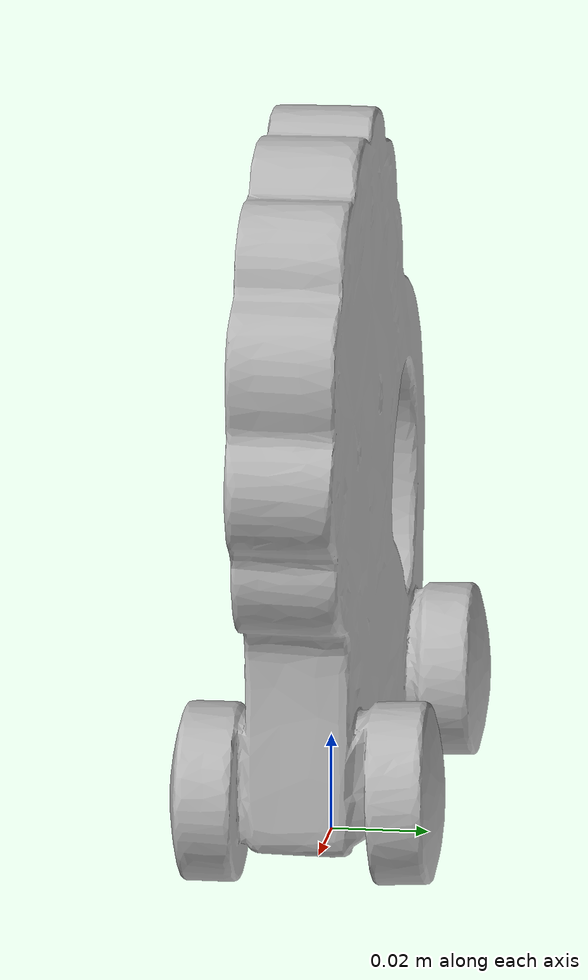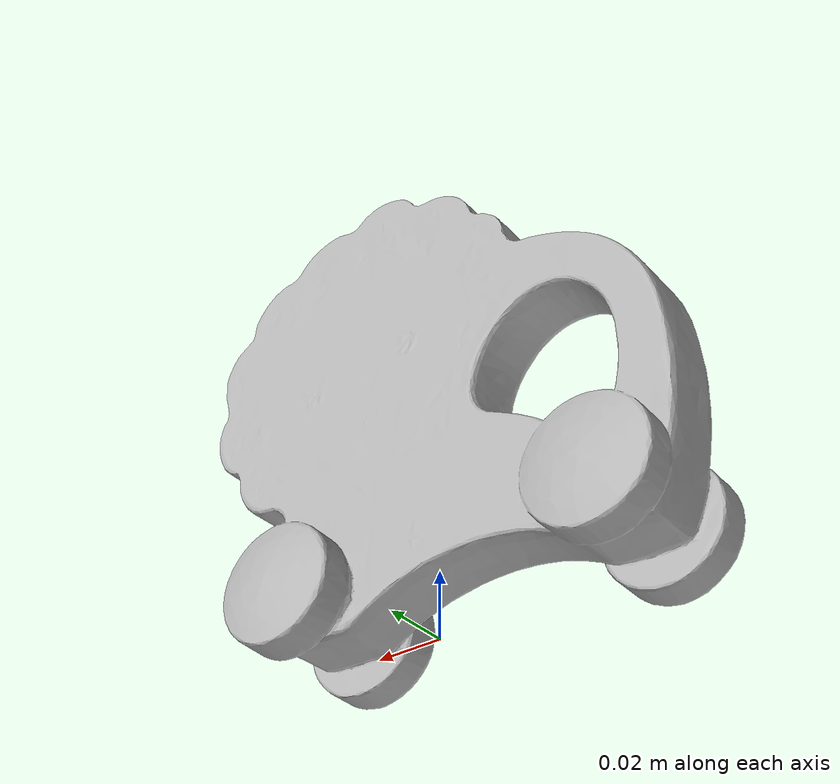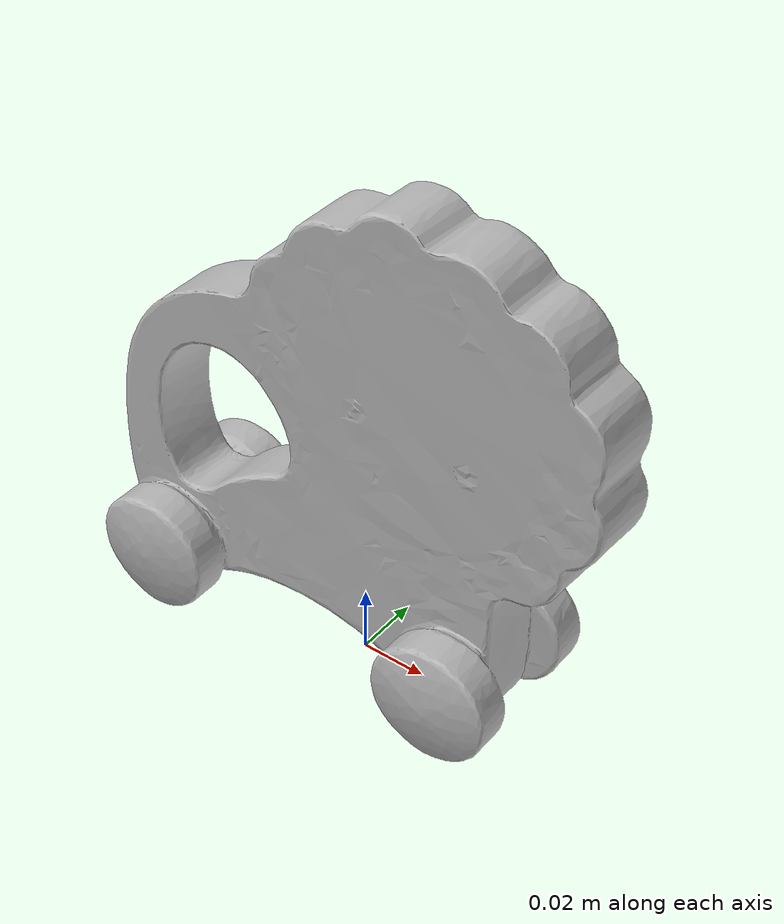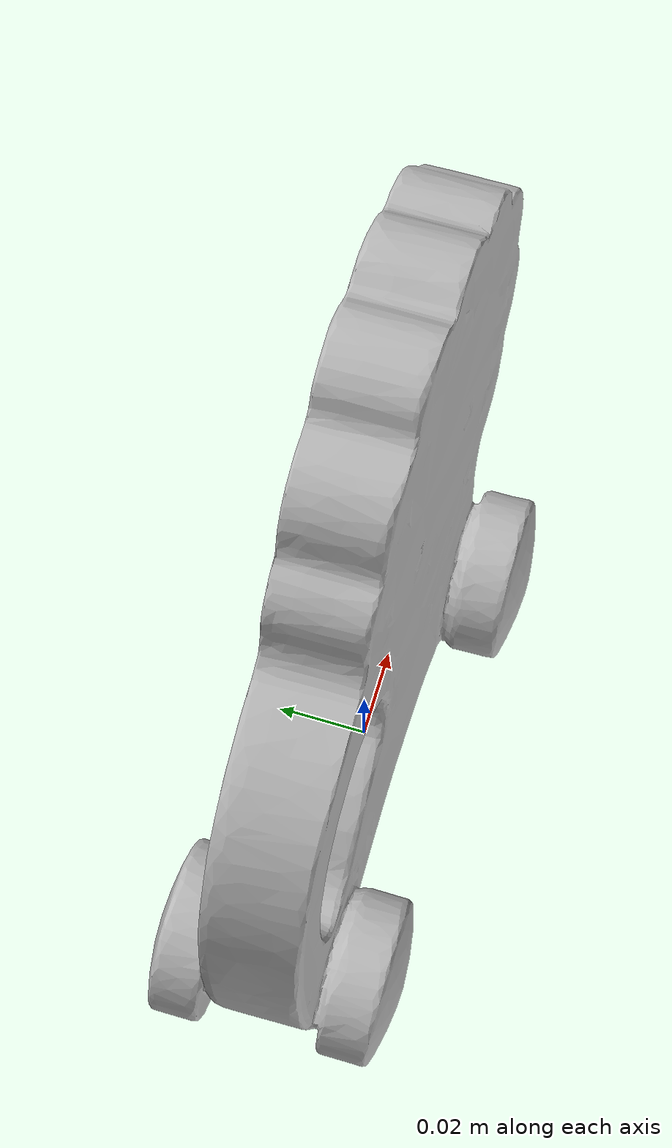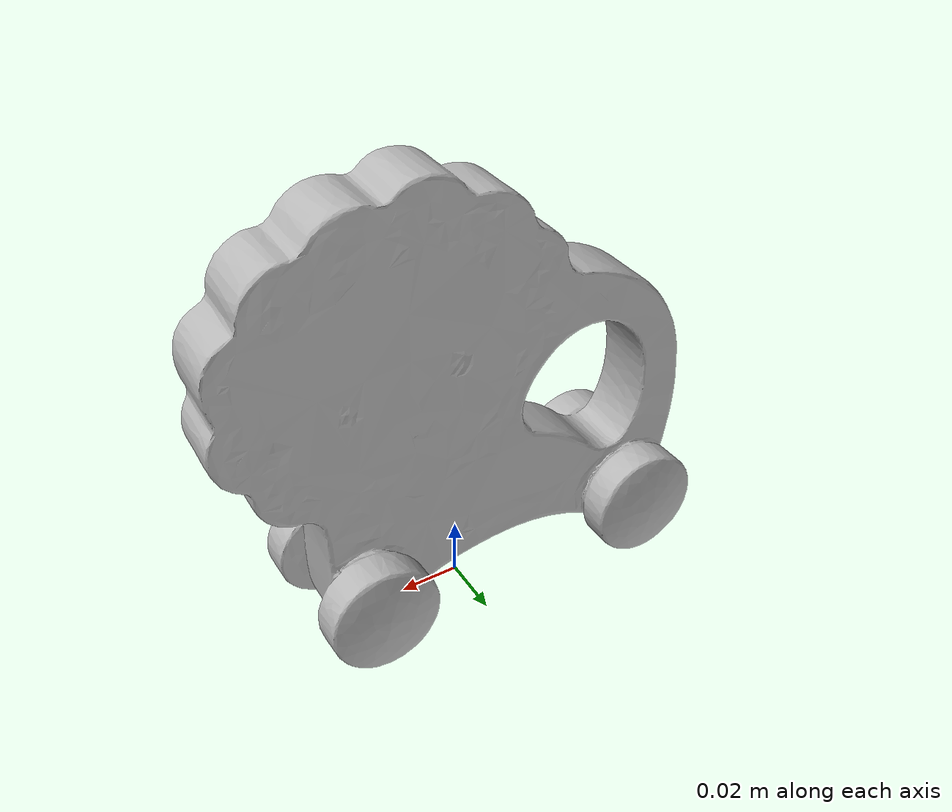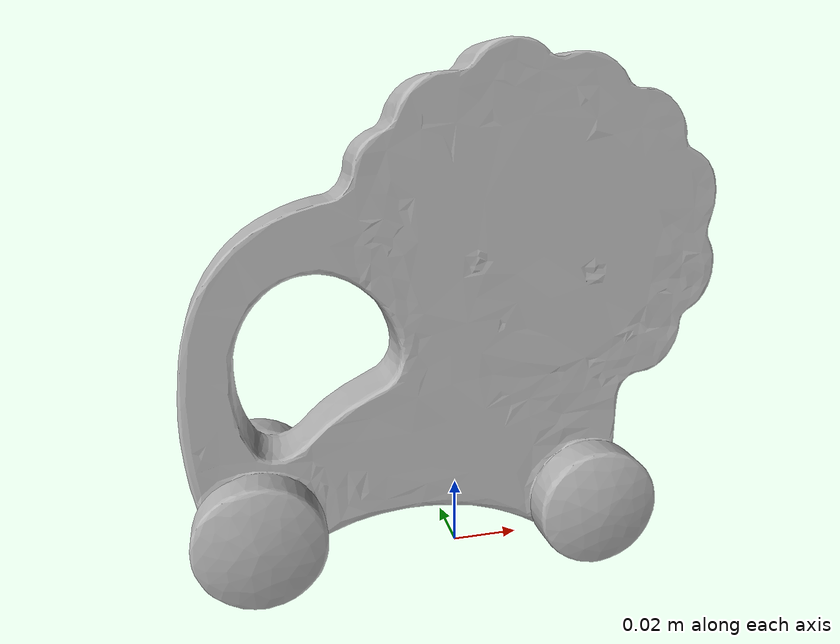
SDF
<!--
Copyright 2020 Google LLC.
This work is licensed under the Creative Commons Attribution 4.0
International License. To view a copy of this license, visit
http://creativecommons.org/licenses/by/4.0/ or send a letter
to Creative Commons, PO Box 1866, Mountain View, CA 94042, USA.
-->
<?xml version="1.0" ?>
<sdf version="1.6">
  <model name="My_First_Rolling_Lion">
    <link name="link_0">
      <visual name="visual">
        <geometry>
          <mesh>
            <uri>meshes/model.obj</uri>
          </mesh>
        </geometry>
      </visual>
      <collision name="collision_0">
        <geometry>
          <mesh>
            <uri>meshes/model.obj</uri>
          </mesh>
        </geometry>
      </collision>
    </link>
  </model>
</sdf>
